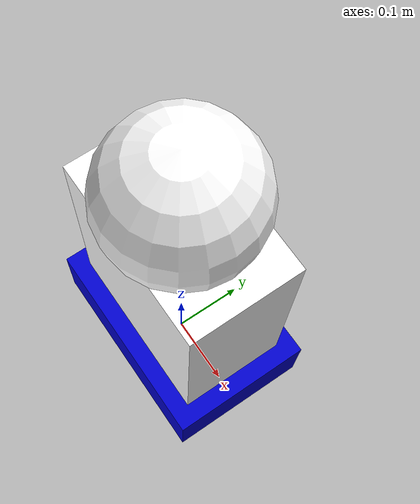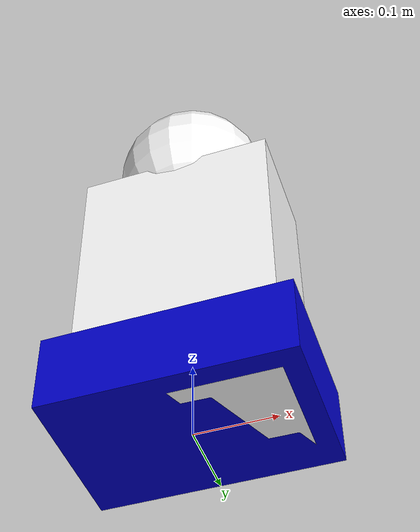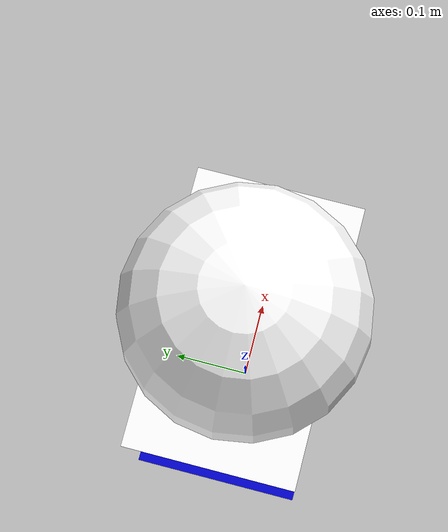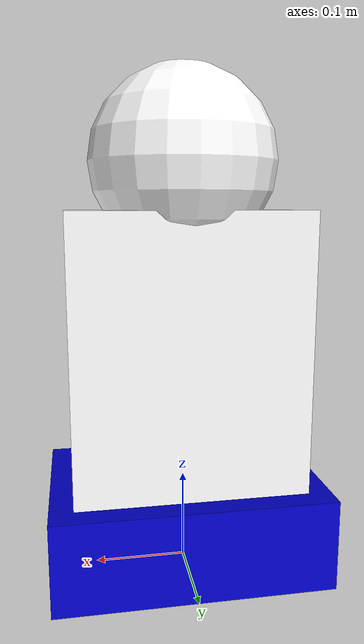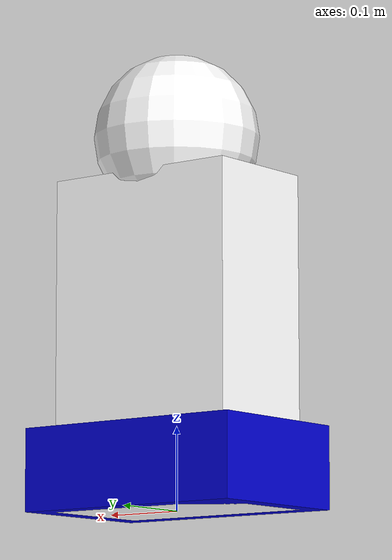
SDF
<?xml version="1.0" ?>
<sdf version="1.7">
  <model name="humanoid">
    <link name="base_link">
      <pose>0 0 0.05 0 0 0</pose>
      <inertial>
        <mass>5.0</mass>
        <inertia>
          <ixx>0.1</ixx>
          <ixy>0.0</ixy>
          <ixz>0.0</ixz>
          <iyy>0.1</iyy>
          <iyz>0.0</iyz>
          <izz>0.1</izz>
        </inertia>
      </inertial>
      <visual name="visual">
        <geometry>
          <box>
            <size>0.3 0.2 0.1</size>
          </box>
        </geometry>
        <material>
          <ambient>0 0 0.8 1</ambient>
          <diffuse>0 0 0.8 1</diffuse>
        </material>
      </visual>
      <collision name="collision">
        <geometry>
          <box>
            <size>0.3 0.2 0.1</size>
          </box>
        </geometry>
      </collision>
    </link>

    <link name="torso">
      <pose>0 0 0.2 0 0 0</pose>
      <inertial>
        <mass>3.0</mass>
        <inertia>
          <ixx>0.05</ixx>
          <ixy>0.0</ixy>
          <ixz>0.0</ixz>
          <iyy>0.05</iyy>
          <iyz>0.0</iyz>
          <izz>0.05</izz>
        </inertia>
      </inertial>
      <visual name="visual">
        <geometry>
          <box>
            <size>0.25 0.15 0.4</size>
          </box>
        </geometry>
        <material>
          <ambient>1 1 1 1</ambient>
          <diffuse>1 1 1 1</diffuse>
        </material>
      </visual>
      <collision name="collision">
        <geometry>
          <box>
            <size>0.25 0.15 0.4</size>
          </box>
        </geometry>
      </collision>
    </link>

    <joint name="torso_joint" type="fixed">
      <parent>base_link</parent>
      <child>torso</child>
    </joint>

    <link name="head">
      <pose>0 0 0.45 0 0 0</pose>
      <inertial>
        <mass>1.0</mass>
        <inertia>
          <ixx>0.002</ixx>
          <ixy>0.0</ixy>
          <ixz>0.0</ixz>
          <iyy>0.002</iyy>
          <iyz>0.0</iyz>
          <izz>0.002</izz>
        </inertia>
      </inertial>
      <visual name="visual">
        <geometry>
          <sphere>
            <radius>0.1</radius>
          </sphere>
        </geometry>
        <material>
          <ambient>1 1 1 1</ambient>
          <diffuse>1 1 1 1</diffuse>
        </material>
      </visual>
      <collision name="collision">
        <geometry>
          <sphere>
            <radius>0.1</radius>
          </sphere>
        </geometry>
      </collision>
    </link>

    <joint name="head_joint" type="fixed">
      <parent>torso</parent>
      <child>head</child>
    </joint>

    <!-- Additional links and joints for arms and legs would go here -->
    <!-- For brevity, we're showing the basic structure -->

    <static>false</static>
    <self_collide>false</self_collide>
  </model>
</sdf>
